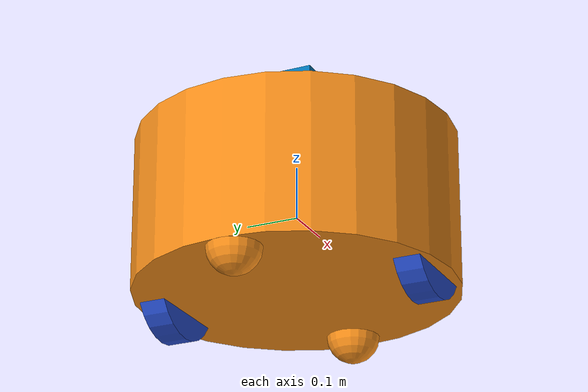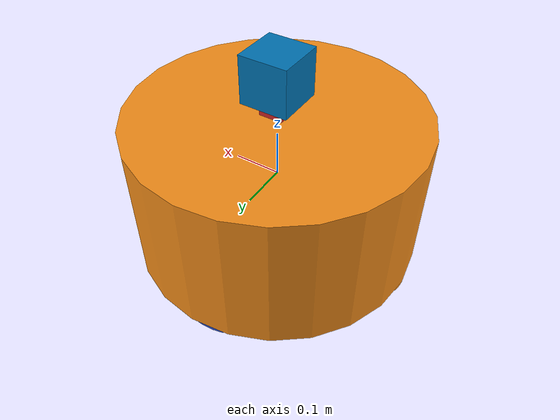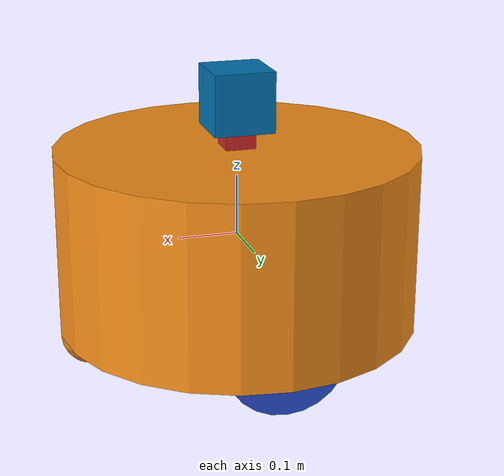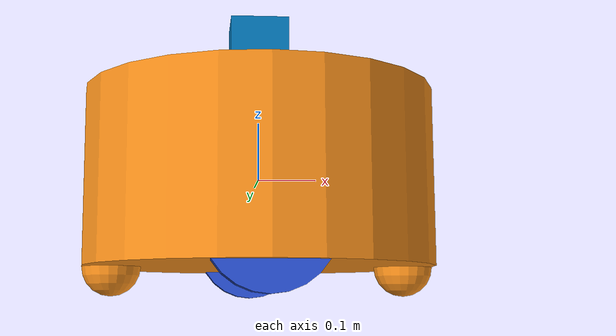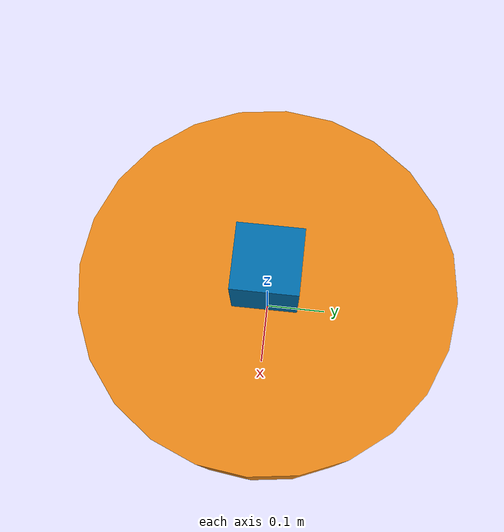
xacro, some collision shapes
<?xml version='1.0'?>

<robot name="myrobot" xmlns:xacro="http://www.ros.org/wiki/xacro">

  <xacro:property name="cameraSize" value="0.05"/>
  <xacro:property name="cameraMass" value="0.1"/>
  <xacro:include filename="$(find mybot_design)/urdf/mybot.gazebo" />
  <xacro:include filename="$(find mybot_design)/urdf/materials.xacro" />
  <xacro:include filename="$(find mybot_design)/urdf/macros.xacro" />

  <link name='chassis'>
    <pose>0 0 0.1 0 0 0</pose>
    <inertial>
      <mass value="10"/>
      <origin xyz="0.0 0 0.1" rpy=" 0 0 0"/>
      <inertia
          ixx="0.1" ixy="0" ixz="0"
          iyy="0.1" iyz="0"
          izz="0.1" />
    </inertial>
    <collision name='collision'>
      <geometry>
        <cylinder length=".3" radius="0.3"/>
      </geometry>
    </collision>
    <visual name='chassis_visual'>
      <origin xyz="0 0 0" rpy=" 0 0 0"/>
      <geometry>
        <cylinder length=".3" radius="0.3"/>
      </geometry>
    </visual>

    <collision name='caster_back_collision'>
      <origin xyz="-0.25 0 -0.15" rpy=" 0 0 0"/>
      <geometry>
        <sphere radius="0.05"/>
      </geometry>
    </collision>
    <visual name='caster_back_visual'>
      <origin xyz="-0.25 0 -0.15" rpy=" 0 0 0"/>
      <geometry>
        <sphere radius="0.05"/>
      </geometry>
    </visual>

    <collision name='caster_front_collision'>
      <origin xyz="0.25 0 -0.15" rpy=" 0 0 0"/>
      <geometry>
        <sphere radius="0.05"/>
      </geometry>
    </collision>
    <visual name='caster_front_visual'>
      <origin xyz="0.25 0 -0.15" rpy=" 0 0 0"/>
      <geometry>
        <sphere radius="0.05"/>
      </geometry>
    </visual>
  </link>

  <link name="left_wheel">
    <collision name="collision">
      <origin xyz="0 0 0" rpy="0 1.5707 1.570"/>
      <geometry>
        <cylinder radius="0.1" length="0.05"/>
      </geometry>
    </collision>
    <visual name="left_wheel_visual">
      <origin xyz="0 0 0" rpy="0 1.5707 1.570"/>
      <geometry>
        <cylinder radius="0.1" length="0.05"/>
      </geometry>
    </visual>
    <inertial>
      <origin xyz="0 0 0" rpy="0 1.5707 1.570"/>
      <mass value="1"/>
      <inertia
        ixx=".1" ixy="0.0" ixz="0.0"
        iyy=".1" iyz="0.0"
        izz=".1"/>
    </inertial>
  </link>

  <link name="right_wheel">
    <collision name="collision">
      <origin xyz="0 0 0" rpy="0 1.5707 1.5707"/>
      <geometry>
        <cylinder radius="0.1" length="0.05"/>
      </geometry>
    </collision>
    <visual name="right_wheel_visual">
      <origin xyz="0 0 0" rpy="0 1.5707 1.5707"/> <!--d xl xd-->
      <geometry>
        <cylinder radius="0.1" length="0.05"/>
      </geometry>
    </visual>
    <inertial>
      <origin xyz="0 0 0" rpy="0 1.5707 1.5707"/>
      <mass value="1"/>
      <inertia
        ixx=".1" ixy="0.0" ixz="0.0"
        iyy=".1" iyz="0.0"
        izz=".1"/>
    </inertial>
  </link>

  <joint type="continuous" name="left_wheel_hinge">
    <origin xyz="0 0.25 -0.1" rpy="0 0 0"/>
    <child link="left_wheel"/>
    <parent link="chassis"/>
    <axis xyz="0 1 0" rpy="0 0 0"/>
    <limit effort="1000" velocity="1000"/>
    <joint_properties damping="100.0" friction="100.0"/>
  </joint>

  <joint type="continuous" name="right_wheel_hinge">
    <origin xyz="0 -0.25 -0.1" rpy="0 0 0"/>
    <child link="right_wheel"/>
    <parent link="chassis"/>
    <axis xyz="0 1 0" rpy="0 0 0"/>
    <limit effort="1000" velocity="1000"/>
    <joint_properties damping="100.0" friction="100.0"/>
  </joint>

  <!-- Camera -->
  <link name="camera">
    <collision>
      <origin xyz="0 0 0" rpy="0 0 0"/>
      <geometry>
        <box size="${cameraSize} ${cameraSize} ${cameraSize}"/>
      </geometry>
    </collision>
    <visual>
      <origin xyz="0 0 0" rpy="0 0 0"/>
      <geometry>
        <box size="${cameraSize} ${cameraSize} ${cameraSize}"/>
      </geometry>
      <material name="red"/>
    </visual>
    <inertial>
      <mass value="${cameraMass}" />
      <origin xyz="0 0 0" rpy="0 0 0"/>
      <box_inertia m="${cameraMass}" x="${cameraSize}" y="${cameraSize}" z="${cameraSize}" />
      <inertia ixx="1e-6" ixy="0" ixz="0" iyy="1e-6" iyz="0" izz="1e-6" />
    </inertial>
  </link>
  <joint name="camera_joint" type="fixed">
    <axis xyz="0 1 0" />
    <origin xyz="0 0 0.175" rpy="0 0 0"/>
    <parent link="chassis"/>
    <child link="camera"/>
  </joint>

  <!-- Hokuyo Laser -->
  <link name="laser">
    <collision>
      <origin xyz="0 0 0" rpy="0 0 0"/>
      <geometry>
    <box size="0.1 0.1 0.1"/>
      </geometry>
    </collision>

    <visual>
      <origin xyz="0 0 0" rpy="0 0 0"/>
      <geometry>
        <mesh filename="package://mybot_design/meshes/hokuyo.dae"/>
      </geometry>
    </visual>

    <inertial>
      <mass value="1e-5" />
      <origin xyz="0 0 0" rpy="0 0 0"/>
      <inertia ixx="1e-6" ixy="0" ixz="0" iyy="1e-6" iyz="0" izz="1e-6" />
    </inertial>
  </link>

  <joint name="laser_joint" type="fixed">
    <axis xyz="0 1 0" />
    <origin xyz="0 0 .23" rpy="0 0 0"/>
    <parent link="chassis"/>
    <child link="laser"/>
  </joint>

</robot>
